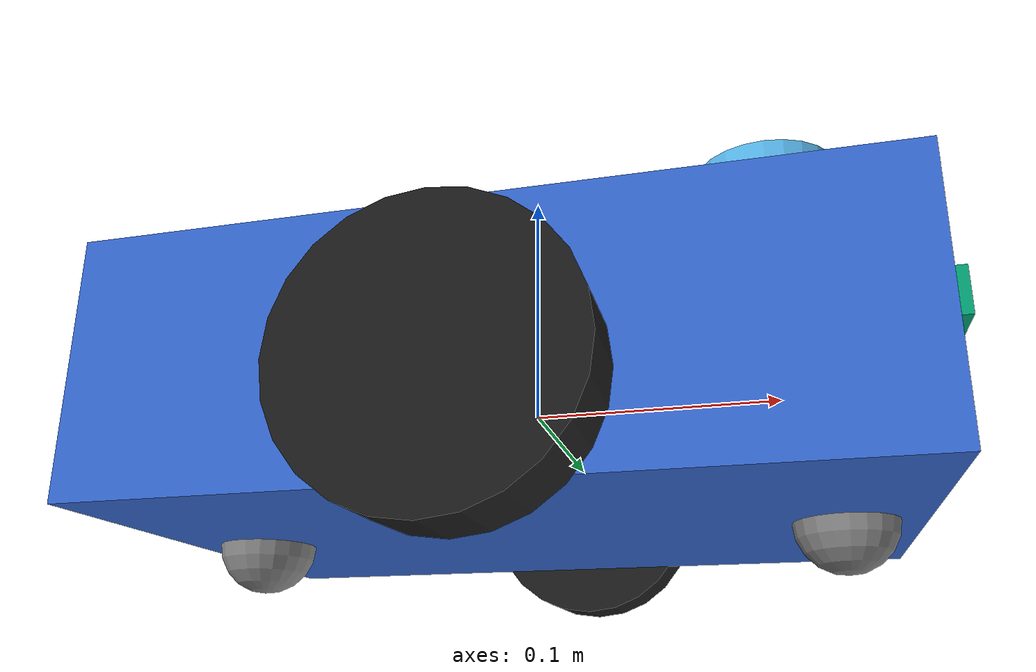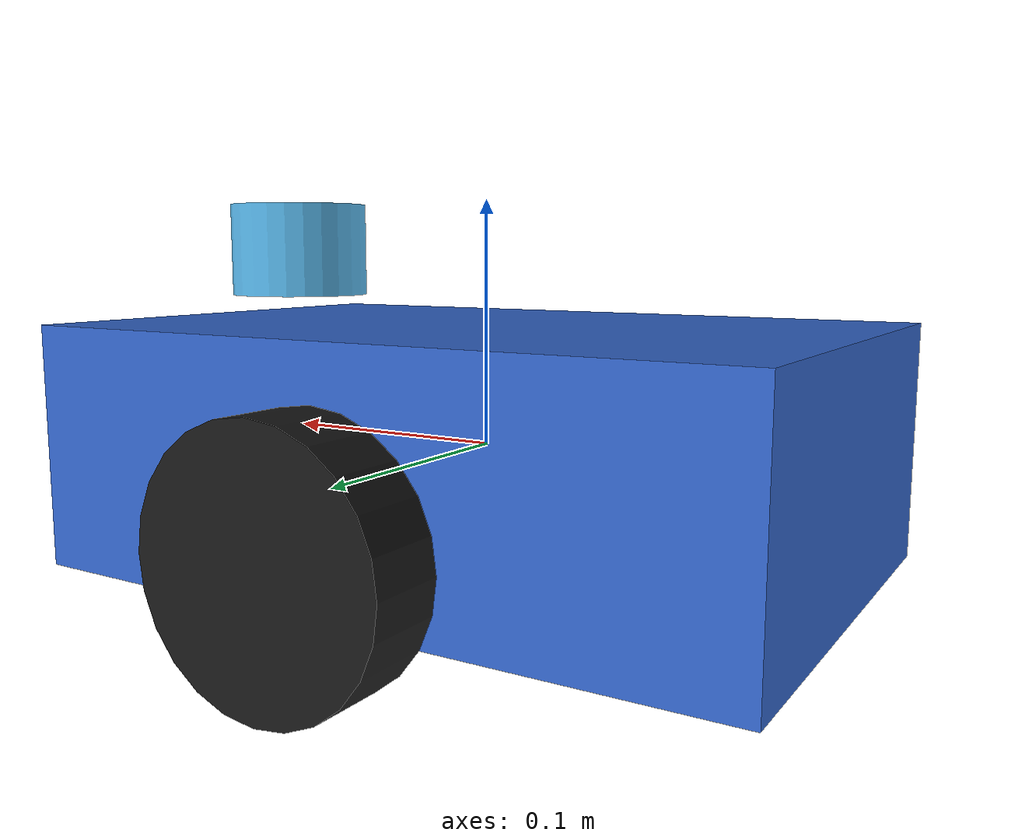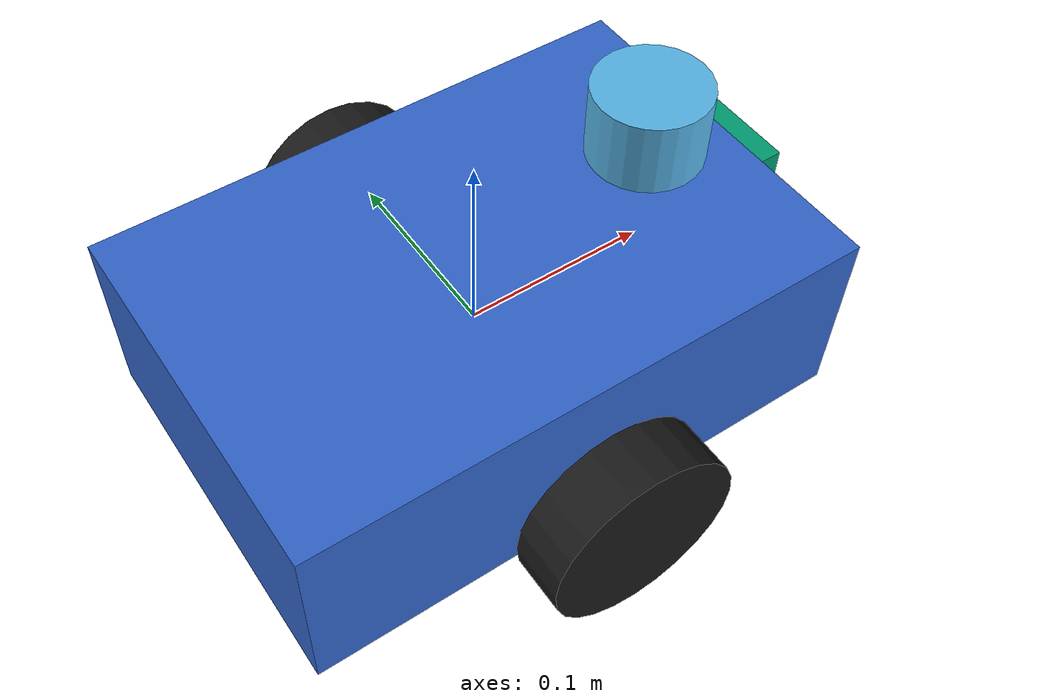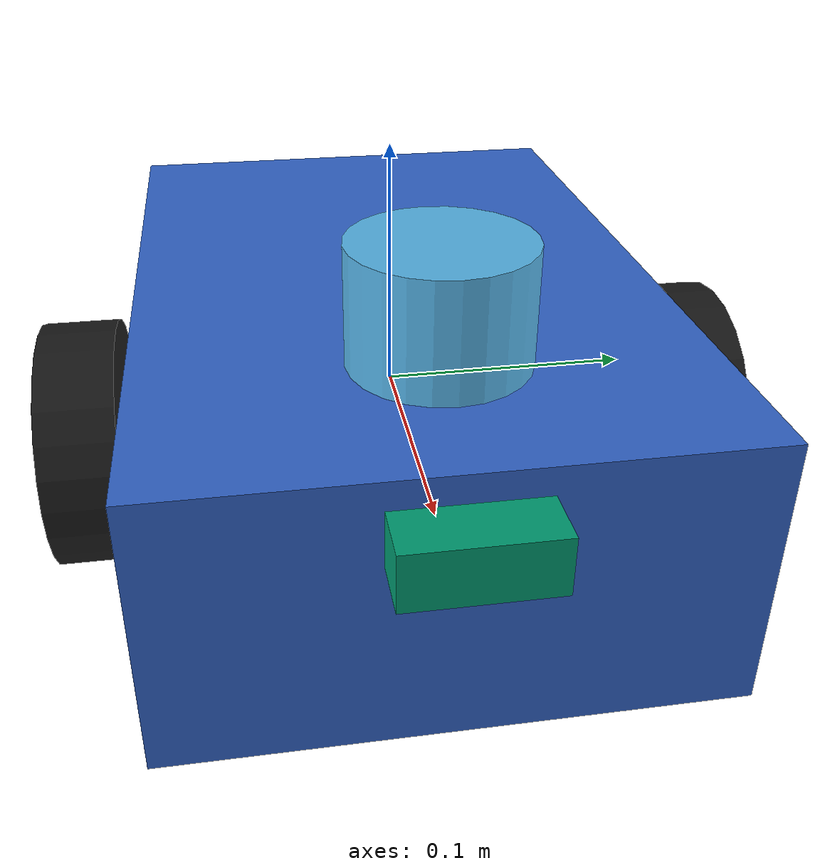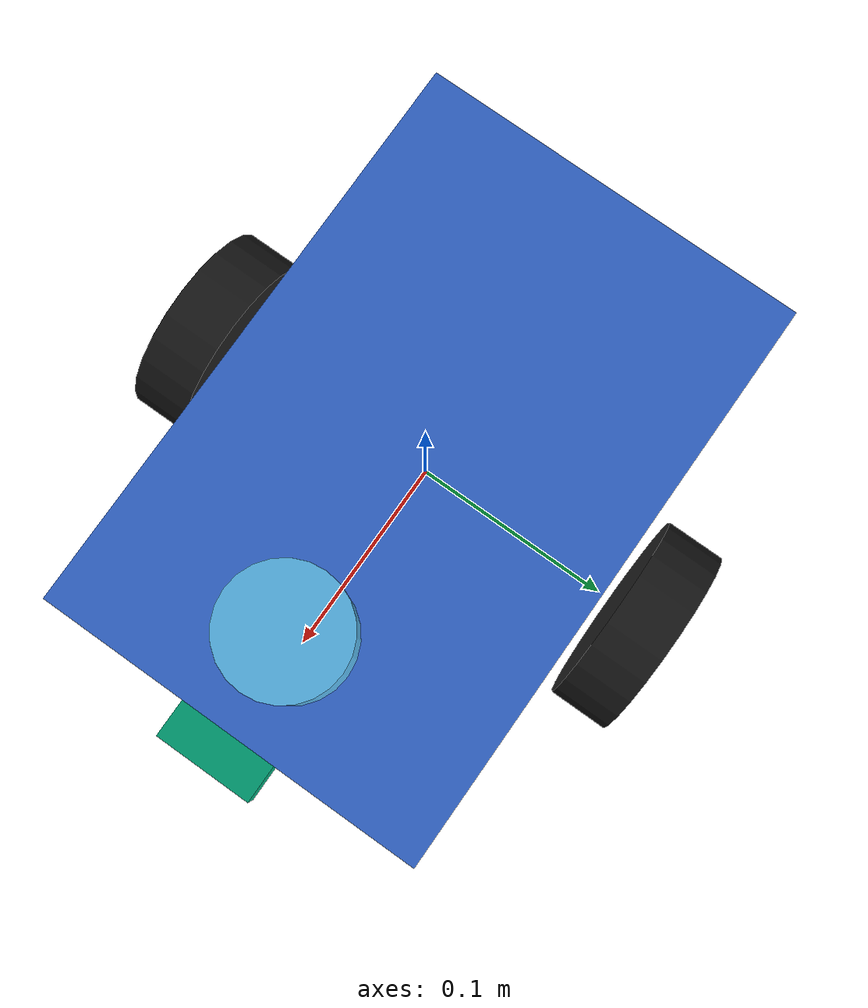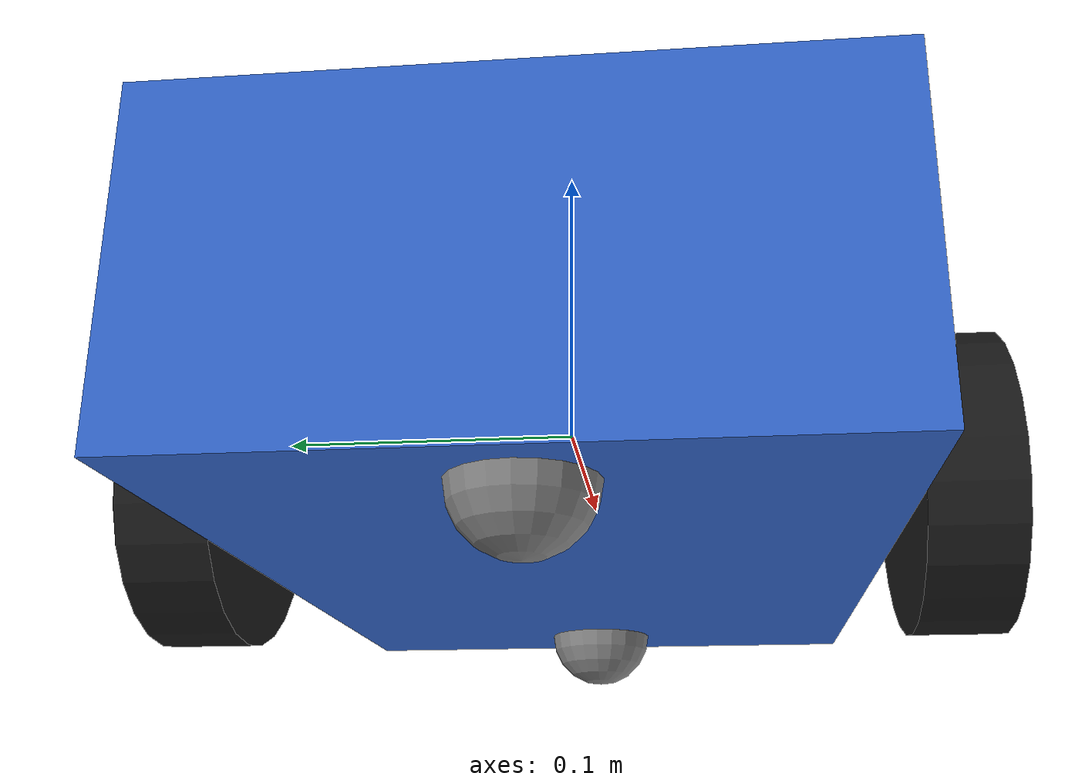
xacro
<?xml version="1.0"?>
<robot name="mi_robot" xmlns:xacro="http://www.ros.org/wiki/xacro">

  <xacro:property name="rueda_radio" value="0.05"/>
  <xacro:property name="rueda_ancho" value="0.03"/>
  <xacro:property name="rueda_masa" value="0.1"/>
  <xacro:property name="separacion_ruedas" value="0.25"/>
  <xacro:property name="caster_radio" value="0.02"/>

  <link name="base_link">
    <visual>
      <geometry><box size="0.3 0.2 0.1"/></geometry>
      <material name="azul"><color rgba="0.2 0.4 0.8 1"/></material>
    </visual>
    <collision>
      <geometry><box size="0.3 0.2 0.1"/></geometry>
    </collision>
    <inertial>
      <mass value="1.0"/>
      <inertia ixx="0.004167" ixy="0.0" ixz="0.0" iyy="0.008333" iyz="0.0" izz="0.010833"/>
    </inertial>
  </link>

  <link name="lidar_link">
    <visual><geometry><cylinder radius="0.03" length="0.04"/></geometry></visual>
    <collision><geometry><cylinder radius="0.03" length="0.04"/></geometry></collision>
    <inertial><mass value="0.05"/><inertia ixx="0.0000179" ixy="0" ixz="0" iyy="0.0000179" iyz="0" izz="0.0000225"/></inertial>
  </link>
  <joint name="joint_lidar" type="fixed">
    <parent link="base_link"/>
    <child link="lidar_link"/>
    <origin xyz="0.1 0 0.08" rpy="0 0 0"/>
  </joint>

  <link name="camera_link">
    <visual><geometry><box size="0.02 0.05 0.02"/></geometry></visual>
    <collision><geometry><box size="0.02 0.05 0.02"/></geometry></collision>
    <inertial><mass value="0.02"/><inertia ixx="0.00000483" ixy="0" ixz="0" iyy="0.00000133" iyz="0" izz="0.00000483"/></inertial>
  </link>
  <joint name="joint_camera" type="fixed">
    <parent link="base_link"/>
    <child link="camera_link"/>
    <origin xyz="0.16 0 0.03" rpy="0 0 0"/>
  </joint>

  <link name="camera_optical_link"/>
  <joint name="joint_camera_optical" type="fixed">
    <parent link="camera_link"/>
    <child link="camera_optical_link"/>
    <origin xyz="0 0 0" rpy="-1.5708 0 -1.5708"/>
  </joint>

  <xacro:macro name="rueda" params="prefijo y_signo">
    <link name="rueda_${prefijo}">
      <visual>
        <geometry><cylinder radius="${rueda_radio}" length="${rueda_ancho}"/></geometry>
        <material name="negro"><color rgba="0.1 0.1 0.1 1"/></material>
      </visual>
      <collision>
        <geometry><cylinder radius="${rueda_radio}" length="${rueda_ancho}"/></geometry>
      </collision>
      <inertial>
        <mass value="${rueda_masa}"/>
        <inertia ixx="${rueda_masa*(3*rueda_radio*rueda_radio+rueda_ancho*rueda_ancho)/12}" ixy="0.0" ixz="0.0"
                 iyy="${rueda_masa*(3*rueda_radio*rueda_radio+rueda_ancho*rueda_ancho)/12}" iyz="0.0"
                 izz="${0.5*rueda_masa*rueda_radio*rueda_radio}"/>
      </inertial>
    </link>

    <joint name="joint_rueda_${prefijo}" type="continuous">
      <parent link="base_link"/>
      <child link="rueda_${prefijo}"/>
      <origin xyz="0 ${y_signo * separacion_ruedas/2} -0.02" rpy="-1.5708 0 0"/>
      <axis xyz="0 0 1"/>
    </joint>
  </xacro:macro>

  <xacro:macro name="caster" params="prefijo x">
    <link name="caster_${prefijo}">
      <visual>
        <geometry><sphere radius="${caster_radio}"/></geometry>
        <material name="gris"><color rgba="0.5 0.5 0.5 1"/></material>
      </visual>
      <collision>
        <geometry><sphere radius="${caster_radio}"/></geometry>
      </collision>
      <inertial>
        <mass value="0.05"/>
        <inertia ixx="${0.4*0.05*caster_radio*caster_radio}" ixy="0.0" ixz="0.0"
                 iyy="${0.4*0.05*caster_radio*caster_radio}" iyz="0.0"
                 izz="${0.4*0.05*caster_radio*caster_radio}"/>
      </inertial>
    </link>
    <joint name="joint_caster_${prefijo}" type="fixed">
      <parent link="base_link"/>
      <child link="caster_${prefijo}"/>
      <origin xyz="${x} 0 ${-0.07 + caster_radio}" rpy="0 0 0"/>
    </joint>
    <gazebo reference="caster_${prefijo}">
      <mu1>0.0</mu1>
      <mu2>0.0</mu2>
    </gazebo>
  </xacro:macro>

  <xacro:rueda prefijo="izq" y_signo="1"/>
  <xacro:rueda prefijo="der" y_signo="-1"/>
  <xacro:caster prefijo="frontal" x="0.12"/>
  <xacro:caster prefijo="trasero" x="-0.12"/>

  <gazebo>
    <plugin filename="gz-sim-diff-drive-system"
            name="gz::sim::systems::DiffDrive">

      <left_joint>joint_rueda_izq</left_joint>
      <right_joint>joint_rueda_der</right_joint>

      <wheel_separation>${separacion_ruedas}</wheel_separation>
      <wheel_radius>${rueda_radio}</wheel_radius>

      <odom_publish_frequency>30</odom_publish_frequency>

      <topic>/model/mi_robot/cmd_vel</topic>
      <odom_topic>/model/mi_robot/odometry</odom_topic>

      <tf_topic>/model/mi_robot/tf</tf_topic>

      <frame_id>odom</frame_id>
      <child_frame_id>base_link</child_frame_id>

    </plugin>
  </gazebo>

  <gazebo>
    <plugin filename="gz-sim-joint-state-publisher-system"
            name="gz::sim::systems::JointStatePublisher"/>
  </gazebo>

  <gazebo reference="lidar_link">
    <sensor name="lidar" type="gpu_lidar">

      <always_on>1</always_on>
      <topic>scan</topic>
      <update_rate>10</update_rate>
      <gz_frame_id>lidar_link</gz_frame_id>

      <lidar>
        <scan>
          <horizontal>
            <samples>360</samples>
            <resolution>1</resolution>
            <min_angle>-3.14159</min_angle>
            <max_angle>3.14159</max_angle>
          </horizontal>
        </scan>

        <range>
          <min>0.15</min>
          <max>8.0</max>
          <resolution>0.01</resolution>
        </range>

        <noise>
          <type>gaussian</type>
          <mean>0.0</mean>
          <stddev>0.01</stddev>
        </noise>
      </lidar>

    </sensor>
  </gazebo>

  <gazebo reference="camera_link">
    <sensor name="camara" type="camera">
      <always_on>1</always_on>
      <topic>image_raw</topic>
      <update_rate>30</update_rate>
      <gz_frame_id>camera_optical_link</gz_frame_id>
      <camera>
        <horizontal_fov>1.047</horizontal_fov>
        <image>
          <width>640</width>
          <height>480</height>
          <format>R8G8B8</format>
        </image>
        <clip><near>0.1</near><far>10</far></clip>
        <noise>
          <type>gaussian</type>
          <mean>0.0</mean>
          <stddev>0.007</stddev>
        </noise>
      </camera>
    </sensor>
  </gazebo>

</robot>
